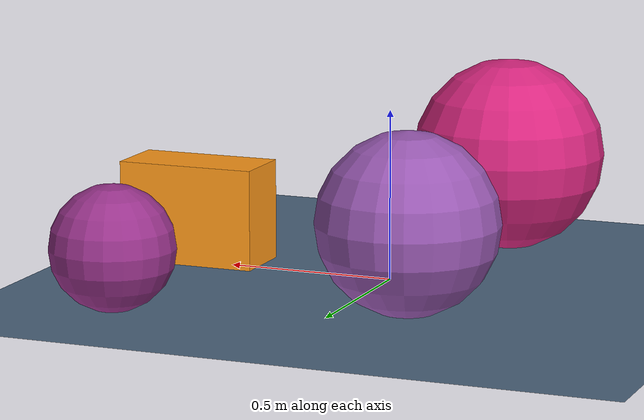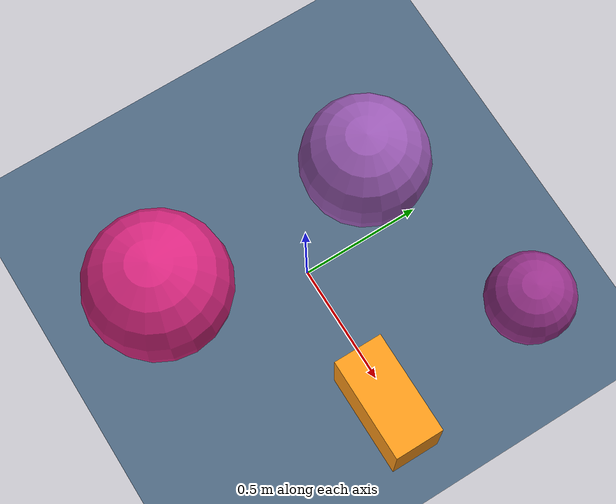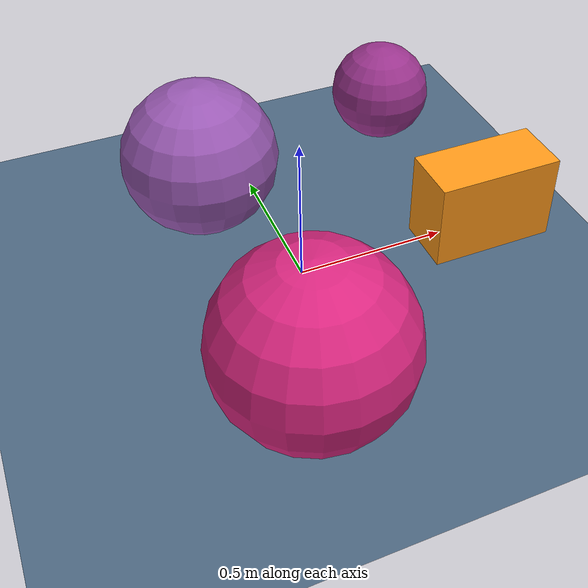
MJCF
<mujoco>
   <asset>
<texture type="skybox" builtin="gradient" rgb1="0.1 0.9 0.4" rgb2="0.6 0.2 0.6" width="256" height="256"/>
<texture name="gradient_0" builtin="gradient" rgb1="0.2 0.2 0.3" rgb2="1.0 0.2 0.8" width="200" height="200"/>
<texture name="checker_1" builtin="checker" rgb1="0.9 0.3 0.4" rgb2="0.8 0.0 0.6" width="200" height="200"/>
<texture name="checker_2" builtin="checker" rgb1="0.9 0.7 0.5" rgb2="0.3 0.0 0.9" width="200" height="200"/>
<texture name="flat_3" builtin="flat" rgb1="1.0 0.6 0.1" rgb2="1.0 0.6 0.1"  width="200" height="200"/><material name="gradient_0_mat" reflectance="0" texture="gradient_0" texuniform="true"/>
<material name="checker_1_mat" reflectance="0" texrepeat="7 7" texture="checker_1" texuniform="false" />
<material name="checker_2_mat" reflectance="0" texrepeat="8 8" texture="checker_2" texuniform="false" />
<material name="flat_3_mat" reflectance="0" texture="flat_3" texuniform="true"/>
   </asset>

   <worldbody>
      <light diffuse=".9 .9 .9" pos="0 0 3" dir="0 0 -1"/>
     <geom type="plane" size="1 1 0.1" rgba="0.3 0.4 0.5 1"/>
<geom type="sphere" pos="0.58 0.64 0.18" size="0.18 0.18 0.18" material="gradient_0_mat" />
<geom type="sphere" pos="-0.18 -0.54 0.29" size="0.29 0.29 0.29" material="checker_1_mat" />
<geom type="sphere" pos="-0.2 0.39 0.26" size="0.26 0.26 0.26" material="checker_2_mat" />
<geom type="box" pos="0.63 -0.04 0.15" size="0.21 0.1 0.15" material="flat_3_mat" /><camera euler="60 0 180" fovy="60" name="camera_a" pos="0 -1.5 1"></camera>   </worldbody>
</mujoco>
